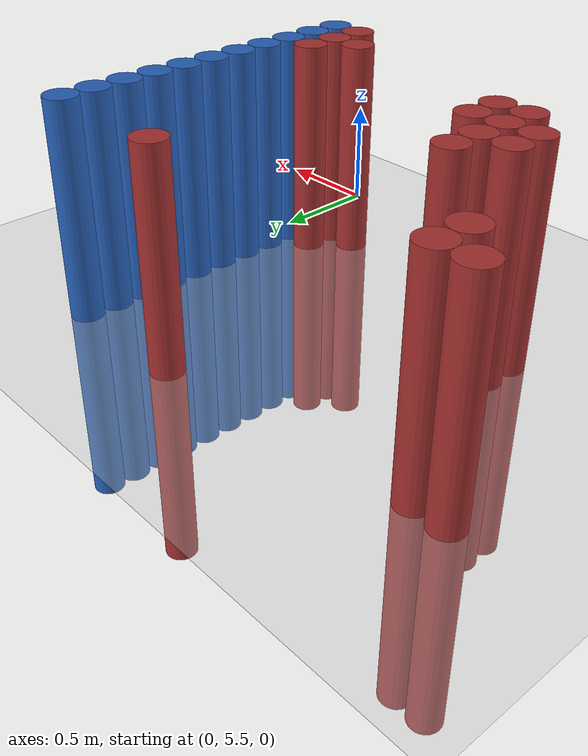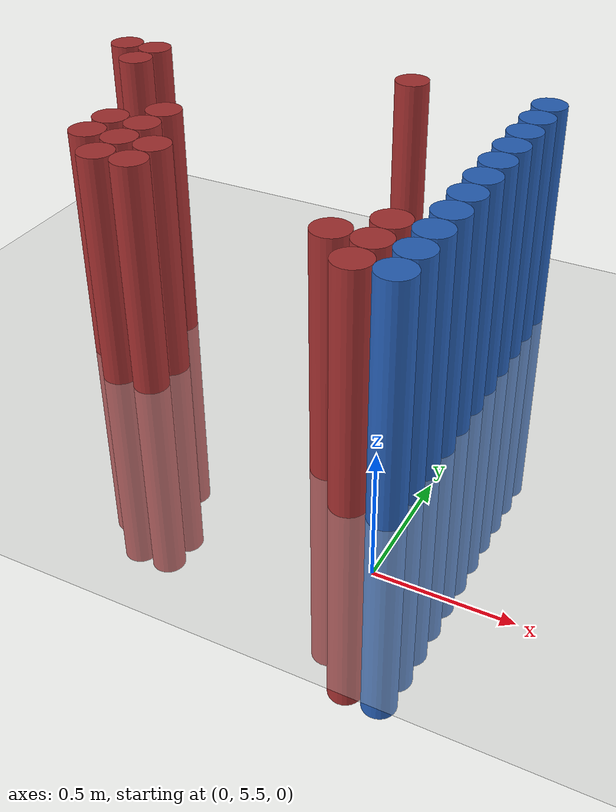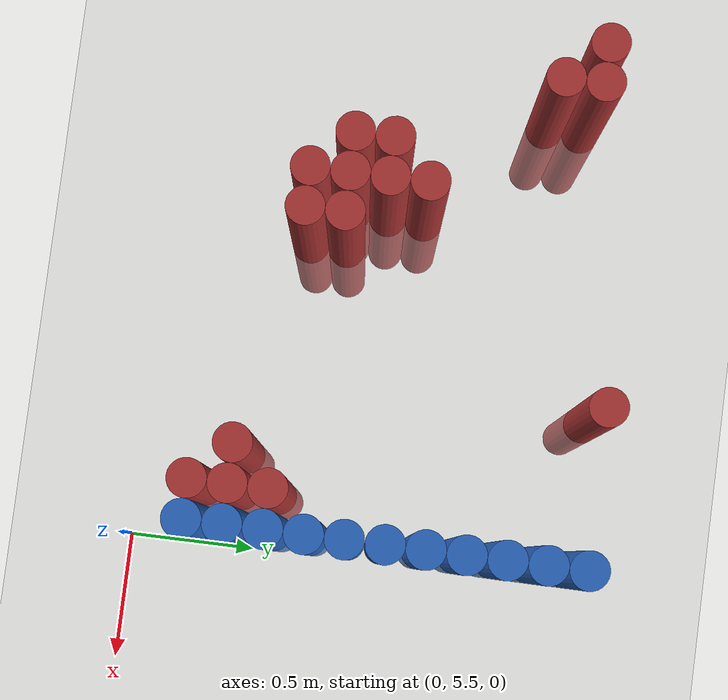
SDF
<sdf version="1.6">
 <world name="default">
  <model name="ground_plane">
   <static>1</static>
   <link name="link">
    <collision name="collision">
     <geometry><plane><normal>0 0 1</normal><size>100 100</size></plane></geometry>
     <surface><friction><ode><mu>100</mu><mu2>50</mu2></ode></friction></surface>
    </collision>
    <visual name="visual">
     <cast_shadows>0</cast_shadows>
     <geometry><plane><normal>0 0 1</normal><size>100 100</size></plane></geometry>
     <material>
      <script><uri>file://media/materials/scripts/gazebo.material</uri><name>Gazebo/Grey</name></script>
     </material>
    </visual>
   </link>
  </model>
  <model name="unit_cylinder_159">
   <static>1</static>
   <pose>-2.025000 7.125000 0.000000 0.000000 0.000000 0.000000</pose>
   <link name="link">
    <inertial>
     <mass>1</mass>
     <inertia><ixx>0.145833</ixx><ixy>0</ixy><ixz>0</ixz><iyy>0.145833</iyy><iyz>0</iyz><izz>0.125</izz></inertia>
    </inertial>
    <collision name="collision">
     <geometry><cylinder><radius>0.075000</radius><length>2</length></cylinder></geometry>
    </collision>
    <visual name="visual">
     <geometry><cylinder><radius>0.075000</radius><length>2</length></cylinder></geometry>
     <material>
      <ambient>0.648000 0.192000 0.192000 1</ambient>
      <diffuse>0.648000 0.192000 0.192000 1</diffuse>
     </material>
     <material>
      <script><name>Gazebo/Grey</name><uri>file://media/materials/scripts/gazebo.material</uri></script>
     </material>
    </visual>
   </link>
  </model>
  <model name="unit_cylinder_160">
   <static>1</static>
   <pose>-1.875000 6.975000 0.000000 0.000000 0.000000 0.000000</pose>
   <link name="link">
    <inertial>
     <mass>1</mass>
     <inertia><ixx>0.145833</ixx><ixy>0</ixy><ixz>0</ixz><iyy>0.145833</iyy><iyz>0</iyz><izz>0.125</izz></inertia>
    </inertial>
    <collision name="collision">
     <geometry><cylinder><radius>0.075000</radius><length>2</length></cylinder></geometry>
    </collision>
    <visual name="visual">
     <geometry><cylinder><radius>0.075000</radius><length>2</length></cylinder></geometry>
     <material>
      <ambient>0.648000 0.192000 0.192000 1</ambient>
      <diffuse>0.648000 0.192000 0.192000 1</diffuse>
     </material>
     <material>
      <script><name>Gazebo/Grey</name><uri>file://media/materials/scripts/gazebo.material</uri></script>
     </material>
    </visual>
   </link>
  </model>
  <model name="unit_cylinder_161">
   <static>1</static>
   <pose>-1.875000 7.125000 0.000000 0.000000 0.000000 0.000000</pose>
   <link name="link">
    <inertial>
     <mass>1</mass>
     <inertia><ixx>0.145833</ixx><ixy>0</ixy><ixz>0</ixz><iyy>0.145833</iyy><iyz>0</iyz><izz>0.125</izz></inertia>
    </inertial>
    <collision name="collision">
     <geometry><cylinder><radius>0.075000</radius><length>2</length></cylinder></geometry>
    </collision>
    <visual name="visual">
     <geometry><cylinder><radius>0.075000</radius><length>2</length></cylinder></geometry>
     <material>
      <ambient>0.648000 0.192000 0.192000 1</ambient>
      <diffuse>0.648000 0.192000 0.192000 1</diffuse>
     </material>
     <material>
      <script><name>Gazebo/Grey</name><uri>file://media/materials/scripts/gazebo.material</uri></script>
     </material>
    </visual>
   </link>
  </model>
  <model name="unit_cylinder_162">
   <static>1</static>
   <pose>-1.575000 6.225000 0.000000 0.000000 0.000000 0.000000</pose>
   <link name="link">
    <inertial>
     <mass>1</mass>
     <inertia><ixx>0.145833</ixx><ixy>0</ixy><ixz>0</ixz><iyy>0.145833</iyy><iyz>0</iyz><izz>0.125</izz></inertia>
    </inertial>
    <collision name="collision">
     <geometry><cylinder><radius>0.075000</radius><length>2</length></cylinder></geometry>
    </collision>
    <visual name="visual">
     <geometry><cylinder><radius>0.075000</radius><length>2</length></cylinder></geometry>
     <material>
      <ambient>0.648000 0.192000 0.192000 1</ambient>
      <diffuse>0.648000 0.192000 0.192000 1</diffuse>
     </material>
     <material>
      <script><name>Gazebo/Grey</name><uri>file://media/materials/scripts/gazebo.material</uri></script>
     </material>
    </visual>
   </link>
  </model>
  <model name="unit_cylinder_163">
   <static>1</static>
   <pose>-1.575000 6.375000 0.000000 0.000000 0.000000 0.000000</pose>
   <link name="link">
    <inertial>
     <mass>1</mass>
     <inertia><ixx>0.145833</ixx><ixy>0</ixy><ixz>0</ixz><iyy>0.145833</iyy><iyz>0</iyz><izz>0.125</izz></inertia>
    </inertial>
    <collision name="collision">
     <geometry><cylinder><radius>0.075000</radius><length>2</length></cylinder></geometry>
    </collision>
    <visual name="visual">
     <geometry><cylinder><radius>0.075000</radius><length>2</length></cylinder></geometry>
     <material>
      <ambient>0.648000 0.192000 0.192000 1</ambient>
      <diffuse>0.648000 0.192000 0.192000 1</diffuse>
     </material>
     <material>
      <script><name>Gazebo/Grey</name><uri>file://media/materials/scripts/gazebo.material</uri></script>
     </material>
    </visual>
   </link>
  </model>
  <model name="unit_cylinder_165">
   <static>1</static>
   <pose>-1.425000 6.075000 0.000000 0.000000 0.000000 0.000000</pose>
   <link name="link">
    <inertial>
     <mass>1</mass>
     <inertia><ixx>0.145833</ixx><ixy>0</ixy><ixz>0</ixz><iyy>0.145833</iyy><iyz>0</iyz><izz>0.125</izz></inertia>
    </inertial>
    <collision name="collision">
     <geometry><cylinder><radius>0.075000</radius><length>2</length></cylinder></geometry>
    </collision>
    <visual name="visual">
     <geometry><cylinder><radius>0.075000</radius><length>2</length></cylinder></geometry>
     <material>
      <ambient>0.648000 0.192000 0.192000 1</ambient>
      <diffuse>0.648000 0.192000 0.192000 1</diffuse>
     </material>
     <material>
      <script><name>Gazebo/Grey</name><uri>file://media/materials/scripts/gazebo.material</uri></script>
     </material>
    </visual>
   </link>
  </model>
  <model name="unit_cylinder_166">
   <static>1</static>
   <pose>-1.425000 6.225000 0.000000 0.000000 0.000000 0.000000</pose>
   <link name="link">
    <inertial>
     <mass>1</mass>
     <inertia><ixx>0.145833</ixx><ixy>0</ixy><ixz>0</ixz><iyy>0.145833</iyy><iyz>0</iyz><izz>0.125</izz></inertia>
    </inertial>
    <collision name="collision">
     <geometry><cylinder><radius>0.075000</radius><length>2</length></cylinder></geometry>
    </collision>
    <visual name="visual">
     <geometry><cylinder><radius>0.075000</radius><length>2</length></cylinder></geometry>
     <material>
      <ambient>0.648000 0.192000 0.192000 1</ambient>
      <diffuse>0.648000 0.192000 0.192000 1</diffuse>
     </material>
     <material>
      <script><name>Gazebo/Grey</name><uri>file://media/materials/scripts/gazebo.material</uri></script>
     </material>
    </visual>
   </link>
  </model>
  <model name="unit_cylinder_167">
   <static>1</static>
   <pose>-1.425000 6.375000 0.000000 0.000000 0.000000 0.000000</pose>
   <link name="link">
    <inertial>
     <mass>1</mass>
     <inertia><ixx>0.145833</ixx><ixy>0</ixy><ixz>0</ixz><iyy>0.145833</iyy><iyz>0</iyz><izz>0.125</izz></inertia>
    </inertial>
    <collision name="collision">
     <geometry><cylinder><radius>0.075000</radius><length>2</length></cylinder></geometry>
    </collision>
    <visual name="visual">
     <geometry><cylinder><radius>0.075000</radius><length>2</length></cylinder></geometry>
     <material>
      <ambient>0.648000 0.192000 0.192000 1</ambient>
      <diffuse>0.648000 0.192000 0.192000 1</diffuse>
     </material>
     <material>
      <script><name>Gazebo/Grey</name><uri>file://media/materials/scripts/gazebo.material</uri></script>
     </material>
    </visual>
   </link>
  </model>
  <model name="unit_cylinder_168">
   <static>1</static>
   <pose>-1.425000 6.525000 0.000000 0.000000 0.000000 0.000000</pose>
   <link name="link">
    <inertial>
     <mass>1</mass>
     <inertia><ixx>0.145833</ixx><ixy>0</ixy><ixz>0</ixz><iyy>0.145833</iyy><iyz>0</iyz><izz>0.125</izz></inertia>
    </inertial>
    <collision name="collision">
     <geometry><cylinder><radius>0.075000</radius><length>2</length></cylinder></geometry>
    </collision>
    <visual name="visual">
     <geometry><cylinder><radius>0.075000</radius><length>2</length></cylinder></geometry>
     <material>
      <ambient>0.648000 0.192000 0.192000 1</ambient>
      <diffuse>0.648000 0.192000 0.192000 1</diffuse>
     </material>
     <material>
      <script><name>Gazebo/Grey</name><uri>file://media/materials/scripts/gazebo.material</uri></script>
     </material>
    </visual>
   </link>
  </model>
  <model name="unit_cylinder_171">
   <static>1</static>
   <pose>-1.275000 6.075000 0.000000 0.000000 0.000000 0.000000</pose>
   <link name="link">
    <inertial>
     <mass>1</mass>
     <inertia><ixx>0.145833</ixx><ixy>0</ixy><ixz>0</ixz><iyy>0.145833</iyy><iyz>0</iyz><izz>0.125</izz></inertia>
    </inertial>
    <collision name="collision">
     <geometry><cylinder><radius>0.075000</radius><length>2</length></cylinder></geometry>
    </collision>
    <visual name="visual">
     <geometry><cylinder><radius>0.075000</radius><length>2</length></cylinder></geometry>
     <material>
      <ambient>0.648000 0.192000 0.192000 1</ambient>
      <diffuse>0.648000 0.192000 0.192000 1</diffuse>
     </material>
     <material>
      <script><name>Gazebo/Grey</name><uri>file://media/materials/scripts/gazebo.material</uri></script>
     </material>
    </visual>
   </link>
  </model>
  <model name="unit_cylinder_172">
   <static>1</static>
   <pose>-1.275000 6.225000 0.000000 0.000000 0.000000 0.000000</pose>
   <link name="link">
    <inertial>
     <mass>1</mass>
     <inertia><ixx>0.145833</ixx><ixy>0</ixy><ixz>0</ixz><iyy>0.145833</iyy><iyz>0</iyz><izz>0.125</izz></inertia>
    </inertial>
    <collision name="collision">
     <geometry><cylinder><radius>0.075000</radius><length>2</length></cylinder></geometry>
    </collision>
    <visual name="visual">
     <geometry><cylinder><radius>0.075000</radius><length>2</length></cylinder></geometry>
     <material>
      <ambient>0.648000 0.192000 0.192000 1</ambient>
      <diffuse>0.648000 0.192000 0.192000 1</diffuse>
     </material>
     <material>
      <script><name>Gazebo/Grey</name><uri>file://media/materials/scripts/gazebo.material</uri></script>
     </material>
    </visual>
   </link>
  </model>
  <model name="unit_cylinder_176">
   <static>1</static>
   <pose>-0.675000 7.275000 0.000000 0.000000 0.000000 0.000000</pose>
   <link name="link">
    <inertial>
     <mass>1</mass>
     <inertia><ixx>0.145833</ixx><ixy>0</ixy><ixz>0</ixz><iyy>0.145833</iyy><iyz>0</iyz><izz>0.125</izz></inertia>
    </inertial>
    <collision name="collision">
     <geometry><cylinder><radius>0.075000</radius><length>2</length></cylinder></geometry>
    </collision>
    <visual name="visual">
     <geometry><cylinder><radius>0.075000</radius><length>2</length></cylinder></geometry>
     <material>
      <ambient>0.648000 0.192000 0.192000 1</ambient>
      <diffuse>0.648000 0.192000 0.192000 1</diffuse>
     </material>
     <material>
      <script><name>Gazebo/Grey</name><uri>file://media/materials/scripts/gazebo.material</uri></script>
     </material>
    </visual>
   </link>
  </model>
  <model name="unit_cylinder_177">
   <static>1</static>
   <pose>-0.375000 5.925000 0.000000 0.000000 0.000000 0.000000</pose>
   <link name="link">
    <inertial>
     <mass>1</mass>
     <inertia><ixx>0.145833</ixx><ixy>0</ixy><ixz>0</ixz><iyy>0.145833</iyy><iyz>0</iyz><izz>0.125</izz></inertia>
    </inertial>
    <collision name="collision">
     <geometry><cylinder><radius>0.075000</radius><length>2</length></cylinder></geometry>
    </collision>
    <visual name="visual">
     <geometry><cylinder><radius>0.075000</radius><length>2</length></cylinder></geometry>
     <material>
      <ambient>0.648000 0.192000 0.192000 1</ambient>
      <diffuse>0.648000 0.192000 0.192000 1</diffuse>
     </material>
     <material>
      <script><name>Gazebo/Grey</name><uri>file://media/materials/scripts/gazebo.material</uri></script>
     </material>
    </visual>
   </link>
  </model>
  <model name="unit_cylinder_179">
   <static>1</static>
   <pose>-0.225000 5.775000 0.000000 0.000000 0.000000 0.000000</pose>
   <link name="link">
    <inertial>
     <mass>1</mass>
     <inertia><ixx>0.145833</ixx><ixy>0</ixy><ixz>0</ixz><iyy>0.145833</iyy><iyz>0</iyz><izz>0.125</izz></inertia>
    </inertial>
    <collision name="collision">
     <geometry><cylinder><radius>0.075000</radius><length>2</length></cylinder></geometry>
    </collision>
    <visual name="visual">
     <geometry><cylinder><radius>0.075000</radius><length>2</length></cylinder></geometry>
     <material>
      <ambient>0.648000 0.192000 0.192000 1</ambient>
      <diffuse>0.648000 0.192000 0.192000 1</diffuse>
     </material>
     <material>
      <script><name>Gazebo/Grey</name><uri>file://media/materials/scripts/gazebo.material</uri></script>
     </material>
    </visual>
   </link>
  </model>
  <model name="unit_cylinder_180">
   <static>1</static>
   <pose>-0.225000 5.925000 0.000000 0.000000 0.000000 0.000000</pose>
   <link name="link">
    <inertial>
     <mass>1</mass>
     <inertia><ixx>0.145833</ixx><ixy>0</ixy><ixz>0</ixz><iyy>0.145833</iyy><iyz>0</iyz><izz>0.125</izz></inertia>
    </inertial>
    <collision name="collision">
     <geometry><cylinder><radius>0.075000</radius><length>2</length></cylinder></geometry>
    </collision>
    <visual name="visual">
     <geometry><cylinder><radius>0.075000</radius><length>2</length></cylinder></geometry>
     <material>
      <ambient>0.648000 0.192000 0.192000 1</ambient>
      <diffuse>0.648000 0.192000 0.192000 1</diffuse>
     </material>
     <material>
      <script><name>Gazebo/Grey</name><uri>file://media/materials/scripts/gazebo.material</uri></script>
     </material>
    </visual>
   </link>
  </model>
  <model name="unit_cylinder_181">
   <static>1</static>
   <pose>-0.225000 6.075000 0.000000 0.000000 0.000000 0.000000</pose>
   <link name="link">
    <inertial>
     <mass>1</mass>
     <inertia><ixx>0.145833</ixx><ixy>0</ixy><ixz>0</ixz><iyy>0.145833</iyy><iyz>0</iyz><izz>0.125</izz></inertia>
    </inertial>
    <collision name="collision">
     <geometry><cylinder><radius>0.075000</radius><length>2</length></cylinder></geometry>
    </collision>
    <visual name="visual">
     <geometry><cylinder><radius>0.075000</radius><length>2</length></cylinder></geometry>
     <material>
      <ambient>0.648000 0.192000 0.192000 1</ambient>
      <diffuse>0.648000 0.192000 0.192000 1</diffuse>
     </material>
     <material>
      <script><name>Gazebo/Grey</name><uri>file://media/materials/scripts/gazebo.material</uri></script>
     </material>
    </visual>
   </link>
  </model>
  <model name="unit_cylinder_192">
   <static>1</static>
   <pose>-0.075000 5.775000 0.000000 0.000000 0.000000 0.000000</pose>
   <link name="link">
    <inertial>
     <mass>1</mass>
     <inertia><ixx>0.145833</ixx><ixy>0</ixy><ixz>0</ixz><iyy>0.145833</iyy><iyz>0</iyz><izz>0.125</izz></inertia>
    </inertial>
    <collision name="collision">
     <geometry><cylinder><radius>0.075000</radius><length>2</length></cylinder></geometry>
    </collision>
    <visual name="visual">
     <geometry><cylinder><radius>0.075000</radius><length>2</length></cylinder></geometry>
     <material>
      <ambient>0.152000 0.379000 0.720000 1</ambient>
      <diffuse>0.152000 0.379000 0.720000 1</diffuse>
     </material>
     <material>
      <script><name>Gazebo/Grey</name><uri>file://media/materials/scripts/gazebo.material</uri></script>
     </material>
    </visual>
   </link>
  </model>
  <model name="unit_cylinder_193">
   <static>1</static>
   <pose>-0.075000 5.925000 0.000000 0.000000 0.000000 0.000000</pose>
   <link name="link">
    <inertial>
     <mass>1</mass>
     <inertia><ixx>0.145833</ixx><ixy>0</ixy><ixz>0</ixz><iyy>0.145833</iyy><iyz>0</iyz><izz>0.125</izz></inertia>
    </inertial>
    <collision name="collision">
     <geometry><cylinder><radius>0.075000</radius><length>2</length></cylinder></geometry>
    </collision>
    <visual name="visual">
     <geometry><cylinder><radius>0.075000</radius><length>2</length></cylinder></geometry>
     <material>
      <ambient>0.152000 0.379000 0.720000 1</ambient>
      <diffuse>0.152000 0.379000 0.720000 1</diffuse>
     </material>
     <material>
      <script><name>Gazebo/Grey</name><uri>file://media/materials/scripts/gazebo.material</uri></script>
     </material>
    </visual>
   </link>
  </model>
  <model name="unit_cylinder_194">
   <static>1</static>
   <pose>-0.075000 6.075000 0.000000 0.000000 0.000000 0.000000</pose>
   <link name="link">
    <inertial>
     <mass>1</mass>
     <inertia><ixx>0.145833</ixx><ixy>0</ixy><ixz>0</ixz><iyy>0.145833</iyy><iyz>0</iyz><izz>0.125</izz></inertia>
    </inertial>
    <collision name="collision">
     <geometry><cylinder><radius>0.075000</radius><length>2</length></cylinder></geometry>
    </collision>
    <visual name="visual">
     <geometry><cylinder><radius>0.075000</radius><length>2</length></cylinder></geometry>
     <material>
      <ambient>0.152000 0.379000 0.720000 1</ambient>
      <diffuse>0.152000 0.379000 0.720000 1</diffuse>
     </material>
     <material>
      <script><name>Gazebo/Grey</name><uri>file://media/materials/scripts/gazebo.material</uri></script>
     </material>
    </visual>
   </link>
  </model>
  <model name="unit_cylinder_195">
   <static>1</static>
   <pose>-0.075000 6.225000 0.000000 0.000000 0.000000 0.000000</pose>
   <link name="link">
    <inertial>
     <mass>1</mass>
     <inertia><ixx>0.145833</ixx><ixy>0</ixy><ixz>0</ixz><iyy>0.145833</iyy><iyz>0</iyz><izz>0.125</izz></inertia>
    </inertial>
    <collision name="collision">
     <geometry><cylinder><radius>0.075000</radius><length>2</length></cylinder></geometry>
    </collision>
    <visual name="visual">
     <geometry><cylinder><radius>0.075000</radius><length>2</length></cylinder></geometry>
     <material>
      <ambient>0.152000 0.379000 0.720000 1</ambient>
      <diffuse>0.152000 0.379000 0.720000 1</diffuse>
     </material>
     <material>
      <script><name>Gazebo/Grey</name><uri>file://media/materials/scripts/gazebo.material</uri></script>
     </material>
    </visual>
   </link>
  </model>
  <model name="unit_cylinder_196">
   <static>1</static>
   <pose>-0.075000 6.375000 0.000000 0.000000 0.000000 0.000000</pose>
   <link name="link">
    <inertial>
     <mass>1</mass>
     <inertia><ixx>0.145833</ixx><ixy>0</ixy><ixz>0</ixz><iyy>0.145833</iyy><iyz>0</iyz><izz>0.125</izz></inertia>
    </inertial>
    <collision name="collision">
     <geometry><cylinder><radius>0.075000</radius><length>2</length></cylinder></geometry>
    </collision>
    <visual name="visual">
     <geometry><cylinder><radius>0.075000</radius><length>2</length></cylinder></geometry>
     <material>
      <ambient>0.152000 0.379000 0.720000 1</ambient>
      <diffuse>0.152000 0.379000 0.720000 1</diffuse>
     </material>
     <material>
      <script><name>Gazebo/Grey</name><uri>file://media/materials/scripts/gazebo.material</uri></script>
     </material>
    </visual>
   </link>
  </model>
  <model name="unit_cylinder_197">
   <static>1</static>
   <pose>-0.075000 6.525000 0.000000 0.000000 0.000000 0.000000</pose>
   <link name="link">
    <inertial>
     <mass>1</mass>
     <inertia><ixx>0.145833</ixx><ixy>0</ixy><ixz>0</ixz><iyy>0.145833</iyy><iyz>0</iyz><izz>0.125</izz></inertia>
    </inertial>
    <collision name="collision">
     <geometry><cylinder><radius>0.075000</radius><length>2</length></cylinder></geometry>
    </collision>
    <visual name="visual">
     <geometry><cylinder><radius>0.075000</radius><length>2</length></cylinder></geometry>
     <material>
      <ambient>0.152000 0.379000 0.720000 1</ambient>
      <diffuse>0.152000 0.379000 0.720000 1</diffuse>
     </material>
     <material>
      <script><name>Gazebo/Grey</name><uri>file://media/materials/scripts/gazebo.material</uri></script>
     </material>
    </visual>
   </link>
  </model>
  <model name="unit_cylinder_198">
   <static>1</static>
   <pose>-0.075000 6.675000 0.000000 0.000000 0.000000 0.000000</pose>
   <link name="link">
    <inertial>
     <mass>1</mass>
     <inertia><ixx>0.145833</ixx><ixy>0</ixy><ixz>0</ixz><iyy>0.145833</iyy><iyz>0</iyz><izz>0.125</izz></inertia>
    </inertial>
    <collision name="collision">
     <geometry><cylinder><radius>0.075000</radius><length>2</length></cylinder></geometry>
    </collision>
    <visual name="visual">
     <geometry><cylinder><radius>0.075000</radius><length>2</length></cylinder></geometry>
     <material>
      <ambient>0.152000 0.379000 0.720000 1</ambient>
      <diffuse>0.152000 0.379000 0.720000 1</diffuse>
     </material>
     <material>
      <script><name>Gazebo/Grey</name><uri>file://media/materials/scripts/gazebo.material</uri></script>
     </material>
    </visual>
   </link>
  </model>
  <model name="unit_cylinder_199">
   <static>1</static>
   <pose>-0.075000 6.825000 0.000000 0.000000 0.000000 0.000000</pose>
   <link name="link">
    <inertial>
     <mass>1</mass>
     <inertia><ixx>0.145833</ixx><ixy>0</ixy><ixz>0</ixz><iyy>0.145833</iyy><iyz>0</iyz><izz>0.125</izz></inertia>
    </inertial>
    <collision name="collision">
     <geometry><cylinder><radius>0.075000</radius><length>2</length></cylinder></geometry>
    </collision>
    <visual name="visual">
     <geometry><cylinder><radius>0.075000</radius><length>2</length></cylinder></geometry>
     <material>
      <ambient>0.152000 0.379000 0.720000 1</ambient>
      <diffuse>0.152000 0.379000 0.720000 1</diffuse>
     </material>
     <material>
      <script><name>Gazebo/Grey</name><uri>file://media/materials/scripts/gazebo.material</uri></script>
     </material>
    </visual>
   </link>
  </model>
  <model name="unit_cylinder_200">
   <static>1</static>
   <pose>-0.075000 6.975000 0.000000 0.000000 0.000000 0.000000</pose>
   <link name="link">
    <inertial>
     <mass>1</mass>
     <inertia><ixx>0.145833</ixx><ixy>0</ixy><ixz>0</ixz><iyy>0.145833</iyy><iyz>0</iyz><izz>0.125</izz></inertia>
    </inertial>
    <collision name="collision">
     <geometry><cylinder><radius>0.075000</radius><length>2</length></cylinder></geometry>
    </collision>
    <visual name="visual">
     <geometry><cylinder><radius>0.075000</radius><length>2</length></cylinder></geometry>
     <material>
      <ambient>0.152000 0.379000 0.720000 1</ambient>
      <diffuse>0.152000 0.379000 0.720000 1</diffuse>
     </material>
     <material>
      <script><name>Gazebo/Grey</name><uri>file://media/materials/scripts/gazebo.material</uri></script>
     </material>
    </visual>
   </link>
  </model>
  <model name="unit_cylinder_201">
   <static>1</static>
   <pose>-0.075000 7.125000 0.000000 0.000000 0.000000 0.000000</pose>
   <link name="link">
    <inertial>
     <mass>1</mass>
     <inertia><ixx>0.145833</ixx><ixy>0</ixy><ixz>0</ixz><iyy>0.145833</iyy><iyz>0</iyz><izz>0.125</izz></inertia>
    </inertial>
    <collision name="collision">
     <geometry><cylinder><radius>0.075000</radius><length>2</length></cylinder></geometry>
    </collision>
    <visual name="visual">
     <geometry><cylinder><radius>0.075000</radius><length>2</length></cylinder></geometry>
     <material>
      <ambient>0.152000 0.379000 0.720000 1</ambient>
      <diffuse>0.152000 0.379000 0.720000 1</diffuse>
     </material>
     <material>
      <script><name>Gazebo/Grey</name><uri>file://media/materials/scripts/gazebo.material</uri></script>
     </material>
    </visual>
   </link>
  </model>
  <model name="unit_cylinder_202">
   <static>1</static>
   <pose>-0.075000 7.275000 0.000000 0.000000 0.000000 0.000000</pose>
   <link name="link">
    <inertial>
     <mass>1</mass>
     <inertia><ixx>0.145833</ixx><ixy>0</ixy><ixz>0</ixz><iyy>0.145833</iyy><iyz>0</iyz><izz>0.125</izz></inertia>
    </inertial>
    <collision name="collision">
     <geometry><cylinder><radius>0.075000</radius><length>2</length></cylinder></geometry>
    </collision>
    <visual name="visual">
     <geometry><cylinder><radius>0.075000</radius><length>2</length></cylinder></geometry>
     <material>
      <ambient>0.152000 0.379000 0.720000 1</ambient>
      <diffuse>0.152000 0.379000 0.720000 1</diffuse>
     </material>
     <material>
      <script><name>Gazebo/Grey</name><uri>file://media/materials/scripts/gazebo.material</uri></script>
     </material>
    </visual>
   </link>
  </model>
 </world>
</sdf>
